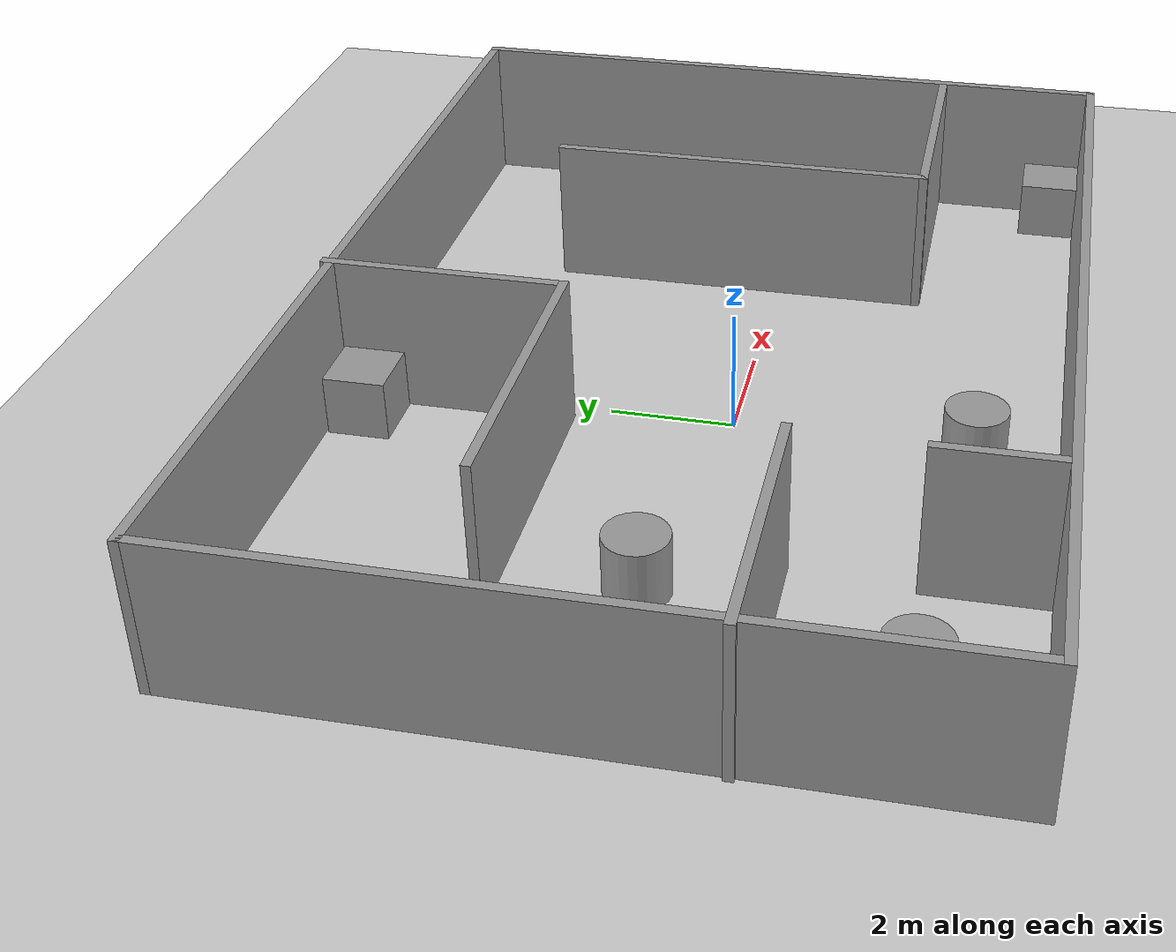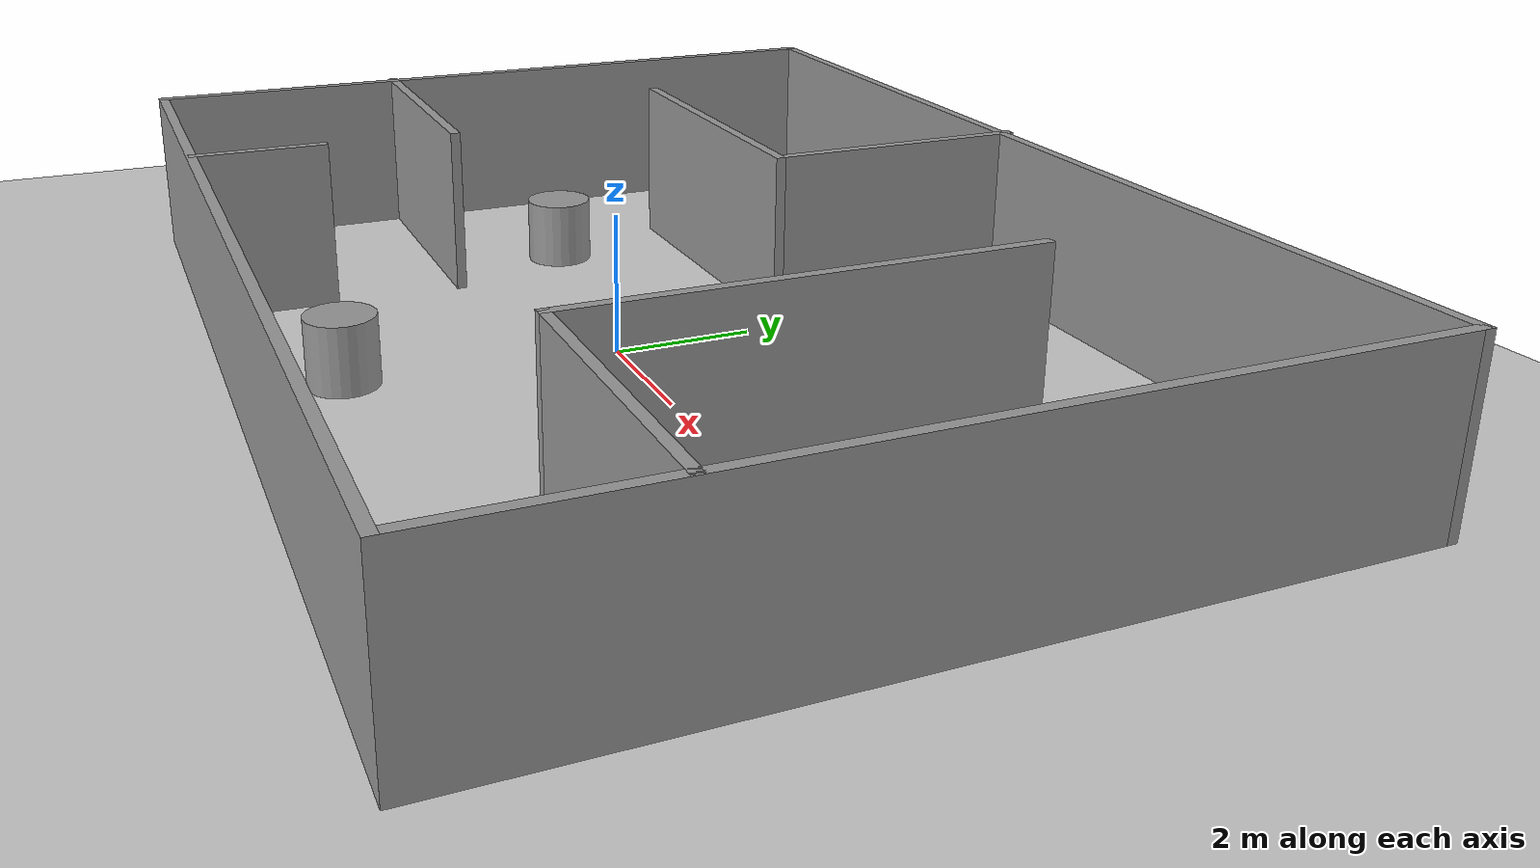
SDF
<sdf version="1.7">
 <world name="default">
  <model name="ground_plane">
   <static>1</static>
   <link name="link">
    <collision name="collision">
     <geometry><plane><normal>0 0 1</normal><size>100 100</size></plane></geometry>
     <surface>
      <contact><collide_bitmask>65535</collide_bitmask></contact>
      <friction><ode><mu>100</mu><mu2>50</mu2></ode></friction>
     </surface>
    </collision>
    <visual name="visual">
     <cast_shadows>0</cast_shadows>
     <geometry><plane><normal>0 0 1</normal><size>100 100</size></plane></geometry>
     <material>
      <script><uri>file://media/materials/scripts/gazebo.material</uri><name>Gazebo/Grey</name></script>
     </material>
    </visual>
   </link>
  </model>
  <light name="sun" type="directional">
   <pose>0 0 10 0 -0 0</pose>
   <diffuse>0.8 0.8 0.8 1</diffuse>
   <specular>0.2 0.2 0.2 1</specular>
   <attenuation>
    <range>1000</range>
    <constant>0.9</constant>
    <linear>0.01</linear>
    <quadratic>0.001</quadratic>
   </attenuation>
   <direction>-0.5 0.1 -0.9</direction>
   <spot><inner_angle>0</inner_angle><outer_angle>0</outer_angle><falloff>0</falloff></spot>
  </light>
  <scene><shadows>0</shadows><ambient>0.4 0.4 0.4 1</ambient><background>0.7 0.7 0.7 1</background></scene>
  <physics type="ode">
   <real_time_update_rate>1000</real_time_update_rate>
   <max_step_size>0.001</max_step_size>
   <real_time_factor>1</real_time_factor>
   <ode>
    <solver>
     <type>quick</type>
     <iters>150</iters>
     <precon_iters>0</precon_iters>
     <sor>1.4</sor>
     <use_dynamic_moi_rescaling>1</use_dynamic_moi_rescaling>
    </solver>
    <constraints>
     <cfm>1e-05</cfm>
     <erp>0.2</erp>
     <contact_max_correcting_vel>2000</contact_max_correcting_vel>
     <contact_surface_layer>0.01</contact_surface_layer>
    </constraints>
   </ode>
  </physics>
  <gravity>0 0 -9.8</gravity>
  <magnetic_field>6e-06 2.3e-05 -4.2e-05</magnetic_field>
  <atmosphere type="adiabatic"/>
  <audio><device>default</device></audio>
  <spherical_coordinates>
   <surface_model>EARTH_WGS84</surface_model>
   <latitude_deg>0</latitude_deg>
   <longitude_deg>0</longitude_deg>
   <elevation>0</elevation>
   <heading_deg>0</heading_deg>
  </spherical_coordinates>
  <model name="custom_world">
   <pose>0.481827 0.630566 0 0 -0 0</pose>
   <link name="Wall_1">
    <collision name="Wall_1_Collision">
     <geometry><box><size>16.25 0.15 2.5</size></box></geometry>
     <pose>0 0 1.25 0 -0 0</pose>
    </collision>
    <visual name="Wall_1_Visual">
     <pose>0 0 1.25 0 -0 0</pose>
     <geometry><box><size>16.25 0.15 2.5</size></box></geometry>
     <material>
      <script><uri>file://media/materials/scripts/gazebo.material</uri><name>Gazebo/Grey</name></script>
      <ambient>1 1 1 1</ambient>
     </material>
     <meta><layer>0</layer></meta>
    </visual>
    <pose>0.032026 -5.84329 0 0 -0 0</pose>
   </link>
   <link name="Wall_11">
    <collision name="Wall_11_Collision">
     <geometry><box><size>2 0.15 2.5</size></box></geometry>
     <pose>0 0 1.25 0 -0 0</pose>
    </collision>
    <visual name="Wall_11_Visual">
     <pose>0 0 1.25 0 -0 0</pose>
     <geometry><box><size>2 0.15 2.5</size></box></geometry>
     <material>
      <script><uri>file://media/materials/scripts/gazebo.material</uri><name>Gazebo/Grey</name></script>
      <ambient>1 1 1 1</ambient>
     </material>
     <meta><layer>0</layer></meta>
    </visual>
    <pose>-4.03647 -4.88292 0 0 -0 1.5708</pose>
   </link>
   <link name="Wall_13">
    <collision name="Wall_13_Collision">
     <geometry><box><size>4 0.15 2.5</size></box></geometry>
     <pose>0 0 1.25 0 -0 0</pose>
    </collision>
    <visual name="Wall_13_Visual">
     <pose>0 0 1.25 0 -0 0</pose>
     <geometry><box><size>4 0.15 2.5</size></box></geometry>
     <material>
      <script><uri>file://media/materials/scripts/gazebo.material</uri><name>Gazebo/Grey</name></script>
      <ambient>1 1 1 1</ambient>
     </material>
     <meta><layer>0</layer></meta>
    </visual>
    <pose>-0.800023 3.91829 0 0 -0 -1.5708</pose>
   </link>
   <link name="Wall_14">
    <collision name="Wall_14_Collision">
     <geometry><box><size>5 0.15 2.5</size></box></geometry>
     <pose>0 0 1.25 0 -0 0</pose>
    </collision>
    <visual name="Wall_14_Visual">
     <pose>0 0 1.25 0 -0 0</pose>
     <geometry><box><size>5 0.15 2.5</size></box></geometry>
     <material>
      <script><uri>file://media/materials/scripts/gazebo.material</uri><name>Gazebo/Grey</name></script>
      <ambient>1 1 1 1</ambient>
     </material>
     <meta><layer>0</layer></meta>
    </visual>
    <pose>-3.22502 1.99329 0 0 -0 3.14159</pose>
   </link>
   <link name="Wall_2">
    <collision name="Wall_2_Collision">
     <geometry><box><size>11.75 0.15 2.5</size></box></geometry>
     <pose>0 0 1.25 0 -0 0</pose>
    </collision>
    <visual name="Wall_2_Visual">
     <pose>0 0 1.25 0 -0 0</pose>
     <geometry><box><size>11.75 0.15 2.5</size></box></geometry>
     <material>
      <script><uri>file://media/materials/scripts/gazebo.material</uri><name>Gazebo/Grey</name></script>
      <ambient>1 1 1 1</ambient>
     </material>
     <meta><layer>0</layer></meta>
    </visual>
    <pose>8.08203 -0.043286 0 0 -0 1.5708</pose>
   </link>
   <link name="Wall_3">
    <collision name="Wall_3_Collision">
     <geometry><box><size>16.25 0.15 2.5</size></box></geometry>
     <pose>0 0 1.25 0 -0 0</pose>
    </collision>
    <visual name="Wall_3_Visual">
     <pose>0 0 1.25 0 -0 0</pose>
     <geometry><box><size>16.25 0.15 2.5</size></box></geometry>
     <material>
      <script><uri>file://media/materials/scripts/gazebo.material</uri><name>Gazebo/Grey</name></script>
      <ambient>1 1 1 1</ambient>
     </material>
     <meta><layer>0</layer></meta>
    </visual>
    <pose>0.032026 5.75671 0 0 -0 3.14159</pose>
   </link>
   <link name="Wall_4">
    <collision name="Wall_4_Collision">
     <geometry><box><size>11.75 0.15 2.5</size></box></geometry>
     <pose>0 0 1.25 0 -0 0</pose>
    </collision>
    <visual name="Wall_4_Visual">
     <pose>0 0 1.25 0 -0 0</pose>
     <geometry><box><size>11.75 0.15 2.5</size></box></geometry>
     <material>
      <script><uri>file://media/materials/scripts/gazebo.material</uri><name>Gazebo/Grey</name></script>
      <ambient>1 1 1 1</ambient>
     </material>
     <meta><layer>0</layer></meta>
    </visual>
    <pose>-8.01797 -0.043286 0 0 -0 -1.5708</pose>
   </link>
   <link name="Wall_6">
    <collision name="Wall_6_Collision">
     <geometry><box><size>4.25 0.15 2.5</size></box></geometry>
     <pose>0 0 1.25 0 -0 0</pose>
    </collision>
    <visual name="Wall_6_Visual">
     <pose>0 0 1.25 0 -0 0</pose>
     <geometry><box><size>4.25 0.15 2.5</size></box></geometry>
     <material>
      <script><uri>file://media/materials/scripts/gazebo.material</uri><name>Gazebo/Grey</name></script>
      <ambient>1 1 1 1</ambient>
     </material>
     <meta><layer>0</layer></meta>
    </visual>
    <pose>6.00975 -3.0974 0 0 -0 3.14159</pose>
   </link>
   <link name="Wall_7">
    <collision name="Wall_7_Collision">
     <geometry><box><size>6.5 0.15 2.5</size></box></geometry>
     <pose>0 0 1.25 0 -0 0</pose>
    </collision>
    <visual name="Wall_7_Visual">
     <pose>0 0 1.25 0 -0 0</pose>
     <geometry><box><size>6.5 0.15 2.5</size></box></geometry>
     <material>
      <script><uri>file://media/materials/scripts/gazebo.material</uri><name>Gazebo/Grey</name></script>
      <ambient>1 1 1 1</ambient>
     </material>
     <meta><layer>0</layer></meta>
    </visual>
    <pose>3.95975 0.077604 0 0 -0 1.5708</pose>
   </link>
   <link name="Wall_9">
    <collision name="Wall_9_Collision">
     <geometry><box><size>4.25 0.15 2.5</size></box></geometry>
     <pose>0 0 1.25 0 -0 0</pose>
    </collision>
    <visual name="Wall_9_Visual">
     <pose>0 0 1.25 0 -0 0</pose>
     <geometry><box><size>4.25 0.15 2.5</size></box></geometry>
     <material>
      <script><uri>file://media/materials/scripts/gazebo.material</uri><name>Gazebo/Grey</name></script>
      <ambient>1 1 1 1</ambient>
     </material>
     <meta><layer>0</layer></meta>
    </visual>
    <pose>-6.03203 -1.96464 0 0 -0 0</pose>
   </link>
   <static>1</static>
  </model>
  <model name="unit_box">
   <pose>-0.927093 5.7755 0.5 0 -0 0</pose>
   <link name="link">
    <inertial>
     <mass>1</mass>
     <inertia>
      <ixx>0.166667</ixx>
      <ixy>0</ixy>
      <ixz>0</ixz>
      <iyy>0.166667</iyy>
      <iyz>0</iyz>
      <izz>0.166667</izz>
     </inertia>
    </inertial>
    <collision name="collision"><geometry><box><size>1 1 1</size></box></geometry></collision>
    <visual name="visual">
     <geometry><box><size>1 1 1</size></box></geometry>
     <material>
      <script><name>Gazebo/Grey</name><uri>file://media/materials/scripts/gazebo.material</uri></script>
     </material>
    </visual>
   </link>
  </model>
  <model name="unit_box_0">
   <pose>5.02223 -1.89183 0.5 -0 -0 -1e-06</pose>
   <link name="link">
    <inertial>
     <mass>1</mass>
     <inertia>
      <ixx>0.166667</ixx>
      <ixy>0</ixy>
      <ixz>0</ixz>
      <iyy>0.166667</iyy>
      <iyz>0</iyz>
      <izz>0.166667</izz>
     </inertia>
    </inertial>
    <collision name="collision"><geometry><box><size>1 1 1</size></box></geometry></collision>
    <visual name="visual">
     <geometry><box><size>1 1 1</size></box></geometry>
     <material>
      <script><name>Gazebo/Grey</name><uri>file://media/materials/scripts/gazebo.material</uri></script>
     </material>
    </visual>
   </link>
  </model>
  <model name="unit_box_1">
   <pose>6.02224 -1.88258 0.5 0 -0 0</pose>
   <link name="link">
    <inertial>
     <mass>1</mass>
     <inertia>
      <ixx>0.166667</ixx>
      <ixy>0</ixy>
      <ixz>0</ixz>
      <iyy>0.166667</iyy>
      <iyz>0</iyz>
      <izz>0.166667</izz>
     </inertia>
    </inertial>
    <collision name="collision"><geometry><box><size>1 1 1</size></box></geometry></collision>
    <visual name="visual">
     <geometry><box><size>1 1 1</size></box></geometry>
     <material>
      <script><name>Gazebo/Grey</name><uri>file://media/materials/scripts/gazebo.material</uri></script>
     </material>
    </visual>
   </link>
  </model>
  <model name="unit_cylinder">
   <pose>-0.290096 -3.81043 0.499993 4e-06 4e-06 -0</pose>
   <link name="link">
    <inertial>
     <mass>1</mass>
     <inertia><ixx>0.145833</ixx><ixy>0</ixy><ixz>0</ixz><iyy>0.145833</iyy><iyz>0</iyz><izz>0.125</izz></inertia>
    </inertial>
    <collision name="collision">
     <geometry><cylinder><radius>0.5</radius><length>1</length></cylinder></geometry>
    </collision>
    <visual name="visual">
     <geometry><cylinder><radius>0.5</radius><length>1</length></cylinder></geometry>
     <material>
      <script><name>Gazebo/Grey</name><uri>file://media/materials/scripts/gazebo.material</uri></script>
     </material>
    </visual>
   </link>
  </model>
  <model name="unit_cylinder_0">
   <pose>-5.74557 -3.4326 0.499997 -4e-06 -4e-06 -0</pose>
   <link name="link">
    <inertial>
     <mass>1</mass>
     <inertia><ixx>0.145833</ixx><ixy>0</ixy><ixz>0</ixz><iyy>0.145833</iyy><iyz>0</iyz><izz>0.125</izz></inertia>
    </inertial>
    <collision name="collision">
     <geometry><cylinder><radius>0.5</radius><length>1</length></cylinder></geometry>
    </collision>
    <visual name="visual">
     <geometry><cylinder><radius>0.5</radius><length>1</length></cylinder></geometry>
     <material>
      <script><name>Gazebo/Grey</name><uri>file://media/materials/scripts/gazebo.material</uri></script>
     </material>
    </visual>
   </link>
  </model>
  <model name="unit_cylinder_1">
   <pose>-4.32217 0.581434 0.499993 4e-06 4e-06 -0</pose>
   <link name="link">
    <inertial>
     <mass>1</mass>
     <inertia><ixx>0.145833</ixx><ixy>0</ixy><ixz>0</ixz><iyy>0.145833</iyy><iyz>0</iyz><izz>0.125</izz></inertia>
    </inertial>
    <collision name="collision">
     <geometry><cylinder><radius>0.5</radius><length>1</length></cylinder></geometry>
    </collision>
    <visual name="visual">
     <geometry><cylinder><radius>0.5</radius><length>1</length></cylinder></geometry>
     <material>
      <script><name>Gazebo/Grey</name><uri>file://media/materials/scripts/gazebo.material</uri></script>
     </material>
    </visual>
   </link>
  </model>
  <model name="unit_box_2">
   <pose>7.98887 -4.63171 0.5 0 -0 6e-06</pose>
   <link name="link">
    <inertial>
     <mass>1</mass>
     <inertia>
      <ixx>0.166667</ixx>
      <ixy>0</ixy>
      <ixz>0</ixz>
      <iyy>0.166667</iyy>
      <iyz>0</iyz>
      <izz>0.166667</izz>
     </inertia>
    </inertial>
    <collision name="collision"><geometry><box><size>1 1 1</size></box></geometry></collision>
    <visual name="visual">
     <geometry><box><size>1 1 1</size></box></geometry>
     <material>
      <script><name>Gazebo/Grey</name><uri>file://media/materials/scripts/gazebo.material</uri></script>
     </material>
    </visual>
   </link>
  </model>
 </world>
</sdf>
